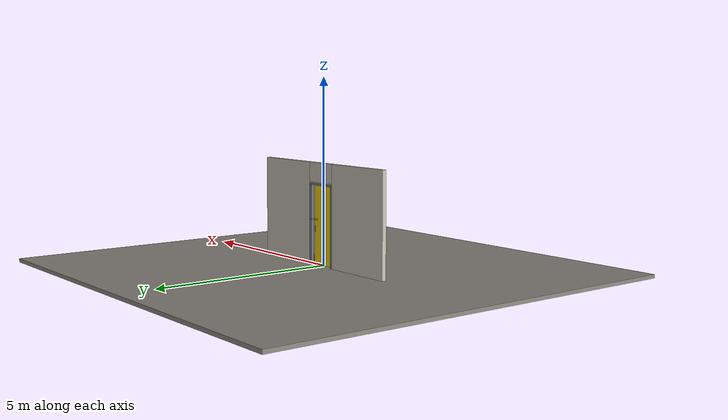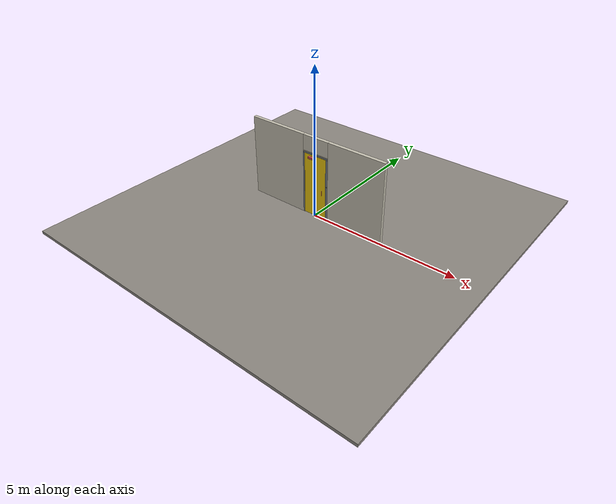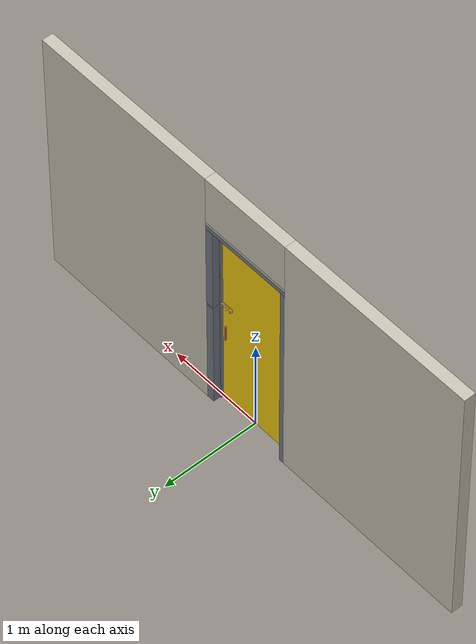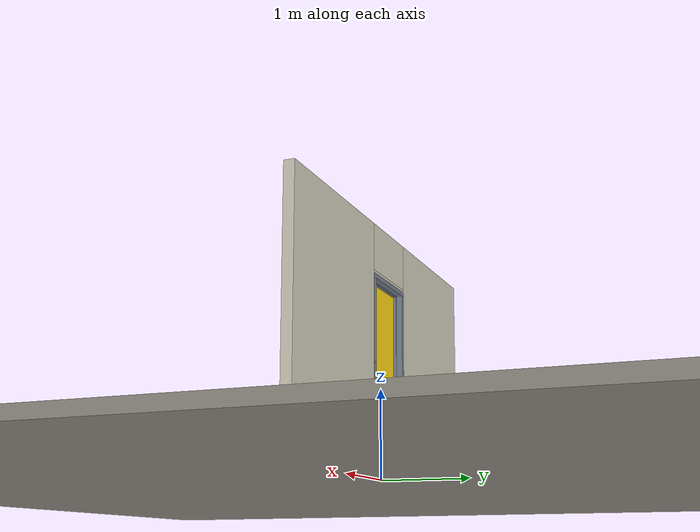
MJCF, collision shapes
<?xml version="1.0" ?>
<mujoco model="db0012_swing_single_simple">
  <compiler angle="radian" meshdir="../../hardware" texturedir="../../textures" autolimits="true" inertiafromgeom="false"/>
  <option timestep="0.002" integrator="implicitfast" cone="elliptic" impratio="10" noslip_iterations="3">
    <flag multiccd="enable"/>
  </option>
  <size memory="16M"/>
  <default>
    <geom condim="4" solref="0.005 1" solimp="0.95 0.99 0.001"/>
    <joint solreflimit="0.005 1" solimplimit="0.95 0.99 0.001"/>
    <tendon solreflimit="0.005 1"/>
    <equality solref="0.002 1"/>
  </default>
  <visual>
    <headlight ambient="0.4 0.4 0.4" diffuse="0.7 0.7 0.7" specular="0.2 0.2 0.2"/>
    <quality shadowsize="4096"/>
    <map znear="0.01" zfar="60"/>
  </visual>
  <asset>
    <mesh name="closer_body_b226fdb10b" file="closer_body_b226fdb10b.obj"/>
    <mesh name="hinge_6a70328eaf" file="hinge_6a70328eaf.obj"/>
    <mesh name="hinge_jamb_2905960ffb" file="hinge_jamb_2905960ffb.obj"/>
    <mesh name="pull_1e5d69a91a" file="pull_1e5d69a91a.obj"/>
    <material name="mat_floor" rgba="0.55 0.53 0.5 1" specular="0.2" shininess="0.15" reflectance="0"/>
    <material name="mat_wall" rgba="0.78 0.76 0.7 1" specular="0.2" shininess="0.1" reflectance="0"/>
    <material name="mat_leaf" rgba="0.95 0.8 0.05 1" specular="0.23" shininess="0.44" reflectance="0.02"/>
    <material name="mat_leaf_louver" rgba="0.807 0.68 0.043 1" specular="0.2" shininess="0.4" reflectance="0"/>
    <material name="mat_hinge" rgba="0.45 0.3 0.22 1" specular="0.5" shininess="0.1" reflectance="0.2"/>
    <material name="mat_op_stainless" rgba="0.75 0.76 0.77 1" specular="0.8" shininess="0.65" reflectance="0.4"/>
    <material name="mat_op_brass" rgba="0.85 0.66 0.3 1" specular="0.8" shininess="0.75" reflectance="0.4"/>
    <material name="mat_frame" rgba="0.45 0.48 0.52 1" specular="0.32" shininess="0.6" reflectance="0.08"/>
    <material name="mat_seal" rgba="0.1 0.1 0.1 1" specular="0.2" shininess="0.1" reflectance="0"/>
    <material name="mat_closer" rgba="0.22 0.17 0.13 1" specular="0.8" shininess="0.6" reflectance="0.4"/>
    <material name="mat_vent" rgba="0.8 0.81 0.83 1" specular="0.8" shininess="0.6" reflectance="0.4"/>
    <material name="mat_placard" rgba="0.95 0.75 0.05 1" specular="0.2" shininess="0.5" reflectance="0"/>
    <texture name="skybox" type="skybox" builtin="gradient" rgb1="0.6 0.7 0.85" rgb2="0.9 0.92 0.95" width="256" height="256"/>
  </asset>
  <worldbody>
    <light name="sun" pos="1.5 -2.5 4" dir="-0.3 0.5 -0.8" directional="true" diffuse="0.8 0.8 0.8" specular="0.3 0.3 0.3" castshadow="true"/>
    <light name="fill" pos="-1.5 2.5 3" dir="0.3 -0.5 -0.7" directional="true" diffuse="0.35 0.35 0.4" castshadow="false"/>
    <camera name="robot_view" pos="0 -2.590313 1.812087" xyaxes="1 0 0 0 0.26963 0.962964" fovy="52"/>
    <camera name="far_view" pos="0 2.685312 1.812087" xyaxes="-1 0 0 0 -0.26963 0.962964" fovy="52"/>
    <camera name="iso" pos="2.004737 -2.168262 2.234138" xyaxes="0.741536 0.670913 0 -0.242917 0.268487 0.932151" fovy="46"/>
    <camera name="detail_handle" pos="0.4815 -0.863 1.245" xyaxes="0.97561 0.219512 0 -0.070934 0.315262 0.94635" fovy="38"/>
    <geom name="floor" type="box" size="6 6 0.05" pos="0 0 -0.05" material="mat_floor" group="0" contype="1" conaffinity="1" friction="0.8 0.005 0.0001" density="2400"/>
    <geom name="wall_left" type="box" size="1.02025 0.0575 1.3735" pos="-1.47975 0.0475 1.3735" material="mat_wall" group="0" contype="1" conaffinity="1" friction="0.6 0.005 0.0001" density="800"/>
    <geom name="wall_right" type="box" size="1.00525 0.0575 1.3735" pos="1.49475 0.0475 1.3735" material="mat_wall" group="0" contype="1" conaffinity="1" friction="0.6 0.005 0.0001" density="800"/>
    <geom name="wall_header" type="box" size="0.4745 0.0575 0.26" pos="0.015 0.0475 2.487" material="mat_wall" group="0" contype="1" conaffinity="1" friction="0.6 0.005 0.0001" density="800"/>
    <geom name="hinge_0_jamb" type="mesh" mesh="hinge_jamb_2905960ffb" pos="-0.4065 -0.01 0.259" material="mat_hinge" group="1" contype="0" conaffinity="0" density="7850"/>
    <geom name="hinge_1_jamb" type="mesh" mesh="hinge_jamb_2905960ffb" pos="-0.4065 -0.01 1.076" material="mat_hinge" group="1" contype="0" conaffinity="0" density="7850"/>
    <geom name="hinge_2_jamb" type="mesh" mesh="hinge_jamb_2905960ffb" pos="-0.4065 -0.01 1.963" material="mat_hinge" group="1" contype="0" conaffinity="0" density="7850"/>
    <geom name="leaf_aux_bolt_keeper_b" type="box" size="0.014 0.003 0.0005" pos="0.409 0.015 1.202" quat="-0.5 -0.5 0.5 0.5" material="mat_op_brass" group="1" contype="0" conaffinity="0" density="7800"/>
    <geom name="leaf_aux_bolt_keeper_l" type="box" size="0.003 0.01 0.0005" pos="0.409 0.026 1.215" quat="-0.5 -0.5 0.5 0.5" material="mat_op_brass" group="1" contype="0" conaffinity="0" density="7800"/>
    <geom name="leaf_aux_bolt_keeper_t" type="box" size="0.014 0.003 0.0005" pos="0.409 0.015 1.228" quat="-0.5 -0.5 0.5 0.5" material="mat_op_brass" group="1" contype="0" conaffinity="0" density="7800"/>
    <geom name="leaf_aux_bolt_keeper_r" type="box" size="0.003 0.01 0.0005" pos="0.409 0.004 1.215" quat="-0.5 -0.5 0.5 0.5" material="mat_op_brass" group="1" contype="0" conaffinity="0" density="7800"/>
    <geom name="jamb_hinge" type="box" size="0.025 0.0575 1.0735" pos="-0.4345 0.0475 1.0735" material="mat_frame" group="0" contype="1" conaffinity="1" friction="0.6 0.005 0.0001" density="300"/>
    <geom name="strike_1215_wall_n" type="box" size="0.04 0.041 0.01" pos="0.4495 0.064 1.215" material="mat_frame" group="0" contype="1" conaffinity="1" friction="0.6 0.005 0.0001" density="300"/>
    <geom name="strike_1215_wall_p" type="box" size="0.04 0.0085 0.01" pos="0.4495 -0.0015 1.215" material="mat_frame" group="0" contype="1" conaffinity="1" friction="0.6 0.005 0.0001" density="300"/>
    <geom name="strike_1215_back" type="box" size="0.019 0.008 0.01" pos="0.4705 0.015 1.215" material="mat_frame" group="0" contype="1" conaffinity="1" friction="0.6 0.005 0.0001" density="300"/>
    <geom name="jamb_strike_0" type="box" size="0.04 0.0575 0.6025" pos="0.4495 0.0475 0.6025" material="mat_frame" group="0" contype="1" conaffinity="1" friction="0.6 0.005 0.0001" density="300"/>
    <geom name="jamb_strike_1" type="box" size="0.04 0.0575 0.461" pos="0.4495 0.0475 1.686" material="mat_frame" group="0" contype="1" conaffinity="1" friction="0.6 0.005 0.0001" density="300"/>
    <geom name="jamb_head" type="box" size="0.4745 0.0575 0.025" pos="0.015 0.0475 2.172" material="mat_frame" group="0" contype="1" conaffinity="1" friction="0.6 0.005 0.0001" density="300"/>
    <geom name="head_stud" type="box" size="0.4745 0.0575 0.015" pos="0.015 0.0475 2.212" material="mat_wall" group="0" contype="1" conaffinity="1" friction="0.6 0.005 0.0001" density="500"/>
    <geom name="stop_hinge" type="box" size="0.0055 0.016 1.0735" pos="-0.404 0.0195 1.0735" material="mat_frame" group="0" contype="1" conaffinity="1" friction="0.6 0.005 0.0001" density="300"/>
    <geom name="stop_strike" type="box" size="0.0055 0.016 0.5965" pos="0.404 0.0195 0.5965" material="mat_frame" group="0" contype="1" conaffinity="1" friction="0.6 0.005 0.0001" density="300"/>
    <geom name="stop_strike_1" type="box" size="0.0055 0.016 0.455" pos="0.404 0.0195 1.692" material="mat_frame" group="0" contype="1" conaffinity="1" friction="0.6 0.005 0.0001" density="300"/>
    <geom name="stop_head" type="box" size="0.4095 0.016 0.0055" pos="0 0.0195 2.1415" material="mat_frame" group="0" contype="1" conaffinity="1" friction="0.6 0.005 0.0001" density="300"/>
    <geom name="seal_hinge" type="box" size="0.004 0.004 1.0735" pos="-0.4065 0.007 1.0735" material="mat_seal" group="1" contype="0" conaffinity="0" density="1100"/>
    <geom name="seal_strike" type="box" size="0.004 0.004 0.5965" pos="0.4065 0.007 0.5965" material="mat_seal" group="1" contype="0" conaffinity="0" density="1100"/>
    <geom name="seal_strike_1" type="box" size="0.004 0.004 0.455" pos="0.4065 0.007 1.692" material="mat_seal" group="1" contype="0" conaffinity="0" density="1100"/>
    <geom name="seal_head" type="box" size="0.3895 0.004 0.008" pos="0 0.007 2.135" material="mat_seal" group="1" contype="0" conaffinity="0" density="1100"/>
    <site name="approach_point" pos="0 -1.5 0" quat="1 0 0 0" size="0.05" rgba="0.2 0.9 0.2 0.5" group="4"/>
    <site name="goal_point" pos="0 1.5 0" quat="1 0 0 0" size="0.05" rgba="0.2 0.9 0.2 0.5" group="4"/>
    <site name="door_plane_center" pos="0 0 1.0735" quat="1 0 0 0" size="0.02" rgba="0.2 0.9 0.2 0.5" group="4"/>
    <body name="leaf" pos="-0.4095 0 0">
      <inertial pos="0.401371 -0.003806 1.161055" mass="86.286493" quat="-0.497373 0.490237 0.505688 0.506525" diaginertia="4.539364248 36.22328318 40.727974697"/>
      <joint name="leaf_hinge" type="hinge" axis="0 0 -1" pos="0.003 -0.01 0" limited="true" range="0 1.745329" solreflimit="0.02 1" damping="10.168374" frictionloss="30.751442" stiffness="14.763213" springref="-3.207974" armature="0.02"/>
      <geom name="leaf_slab" type="box" size="0.4065 0.003 1.067" pos="0.4095 0 1.076" material="mat_leaf" group="0" contype="1" conaffinity="1" friction="0.45 0.005 0.0001" density="1"/>
      <geom name="hinge_0" type="mesh" mesh="hinge_6a70328eaf" pos="0.003 -0.01 0.259" material="mat_hinge" group="1" contype="0" conaffinity="0" density="7850"/>
      <geom name="hinge_1" type="mesh" mesh="hinge_6a70328eaf" pos="0.003 -0.01 1.076" material="mat_hinge" group="1" contype="0" conaffinity="0" density="7850"/>
      <geom name="hinge_2" type="mesh" mesh="hinge_6a70328eaf" pos="0.003 -0.01 1.963" material="mat_hinge" group="1" contype="0" conaffinity="0" density="7850"/>
      <geom name="leaf_pull_n" type="mesh" mesh="pull_1e5d69a91a" pos="0.711 -0.003 0.965" quat="0.707107 0.707107 0 0" material="mat_op_stainless" group="1" contype="0" conaffinity="0" density="3000"/>
      <geom name="leaf_pull_col_n" type="capsule" size="0.0095 0.08" pos="0.711 -0.063 0.965" material="mat_op_stainless" group="3" contype="1" conaffinity="1" rgba="0.8 0.3 0.3 0.25" friction="0.7 0.01 0.0001" density="3000"/>
      <geom name="leaf_pull_p" type="mesh" mesh="pull_1e5d69a91a" pos="0.711 0.003 0.965" quat="-0.707107 0.707107 0 0" material="mat_op_stainless" group="1" contype="0" conaffinity="0" density="3000"/>
      <geom name="leaf_pull_col_p" type="capsule" size="0.0095 0.08" pos="0.711 0.063 0.965" material="mat_op_stainless" group="3" contype="1" conaffinity="1" rgba="0.8 0.3 0.3 0.25" friction="0.7 0.01 0.0001" density="3000"/>
      <geom name="leaf_aux_bolt_plate" type="box" size="0.0595 0.019 0.001" pos="0.7485 0.004 1.215" quat="0.707107 -0.707107 0 0" material="mat_op_brass" group="1" contype="0" conaffinity="0" density="7800"/>
      <geom name="leaf_aux_bolt_guide_0_leg_n" type="box" size="0.006 0.002 0.0125" pos="0.8 0.0155 1.226" quat="0.707107 -0.707107 0 0" material="mat_op_brass" group="1" contype="0" conaffinity="0" density="7800"/>
      <geom name="leaf_aux_bolt_guide_0_leg_p" type="box" size="0.006 0.002 0.0125" pos="0.8 0.0155 1.204" quat="0.707107 -0.707107 0 0" material="mat_op_brass" group="1" contype="0" conaffinity="0" density="7800"/>
      <geom name="leaf_aux_bolt_guide_0_bridge" type="box" size="0.006 0.013 0.002" pos="0.8 0.026 1.215" quat="0.707107 -0.707107 0 0" material="mat_op_brass" group="1" contype="0" conaffinity="0" density="7800"/>
      <geom name="leaf_aux_bolt_guide_1_leg_n" type="box" size="0.006 0.002 0.0125" pos="0.699 0.0155 1.226" quat="0.707107 -0.707107 0 0" material="mat_op_brass" group="1" contype="0" conaffinity="0" density="7800"/>
      <geom name="leaf_aux_bolt_guide_1_leg_p" type="box" size="0.006 0.002 0.0125" pos="0.699 0.0155 1.204" quat="0.707107 -0.707107 0 0" material="mat_op_brass" group="1" contype="0" conaffinity="0" density="7800"/>
      <geom name="leaf_aux_bolt_guide_1_bridge" type="box" size="0.006 0.013 0.002" pos="0.699 0.026 1.215" quat="0.707107 -0.707107 0 0" material="mat_op_brass" group="1" contype="0" conaffinity="0" density="7800"/>
      <geom name="closer_body" type="mesh" mesh="closer_body_b226fdb10b" pos="0.3 -0.003 2.054" quat="0.707107 0.707107 0 0" material="mat_closer" group="1" contype="0" conaffinity="0" density="2000"/>
      <geom name="closer_body_col" type="box" size="0.12 0.04 0.03" pos="0.3 -0.043 2.054" material="mat_closer" group="3" contype="1" conaffinity="1" rgba="0.8 0.3 0.3 0.25" friction="0.6 0.005 0.0001" density="2000"/>
      <site name="leaf_pull_grip_n" pos="0.711 -0.063 0.965" quat="1 0 0 0" size="0.012" rgba="0.2 0.9 0.2 0.5" group="4"/>
      <site name="leaf_pull_grip_p" pos="0.711 0.063 0.965" quat="1 0 0 0" size="0.012" rgba="0.2 0.9 0.2 0.5" group="4"/>
      <site name="leaf_edge_mid" pos="0.816 0 1.067" quat="1 0 0 0" size="0.02" rgba="0.2 0.9 0.2 0.5" group="4"/>
      <body name="leaf_aux_bolt" pos="0.816 0.015 1.215">
        <inertial pos="-0.067426 0.002426 0" mass="0.101671" quat="0.999708 0 0 -0.024159" diaginertia="0.000005554 0.000069827 0.000073677"/>
        <joint name="leaf_aux_bolt_slide" type="slide" axis="-1 0 0" limited="true" range="0 0.045" damping="1" frictionloss="1" armature="0.1" ref="0.045"/>
        <geom name="leaf_aux_bolt_rod" type="capsule" size="0.006 0.044" pos="-0.065 0 0" quat="0.707107 0 0.707107 0" material="mat_op_brass" group="0" contype="1" conaffinity="1" friction="0.6 0.005 0.0001" density="7850"/>
        <geom name="leaf_aux_bolt_knob" type="capsule" size="0.005 0.01" pos="-0.08 0.015 0" quat="0.707107 -0.707107 0 0" material="mat_op_brass" group="0" contype="1" conaffinity="1" friction="0.6 0.005 0.0001" density="7850"/>
        <site name="leaf_aux_bolt_grip" pos="-0.08 0.034 0" quat="1 0 0 0" size="0.012" rgba="0.2 0.9 0.2 0.5" group="4"/>
      </body>
    </body>
  </worldbody>
  <sensor>
    <jointpos name="leaf_hinge_pos" joint="leaf_hinge"/>
    <jointvel name="leaf_hinge_vel" joint="leaf_hinge"/>
    <jointpos name="leaf_aux_bolt_slide_pos" joint="leaf_aux_bolt_slide"/>
    <jointvel name="leaf_aux_bolt_slide_vel" joint="leaf_aux_bolt_slide"/>
  </sensor>
</mujoco>
